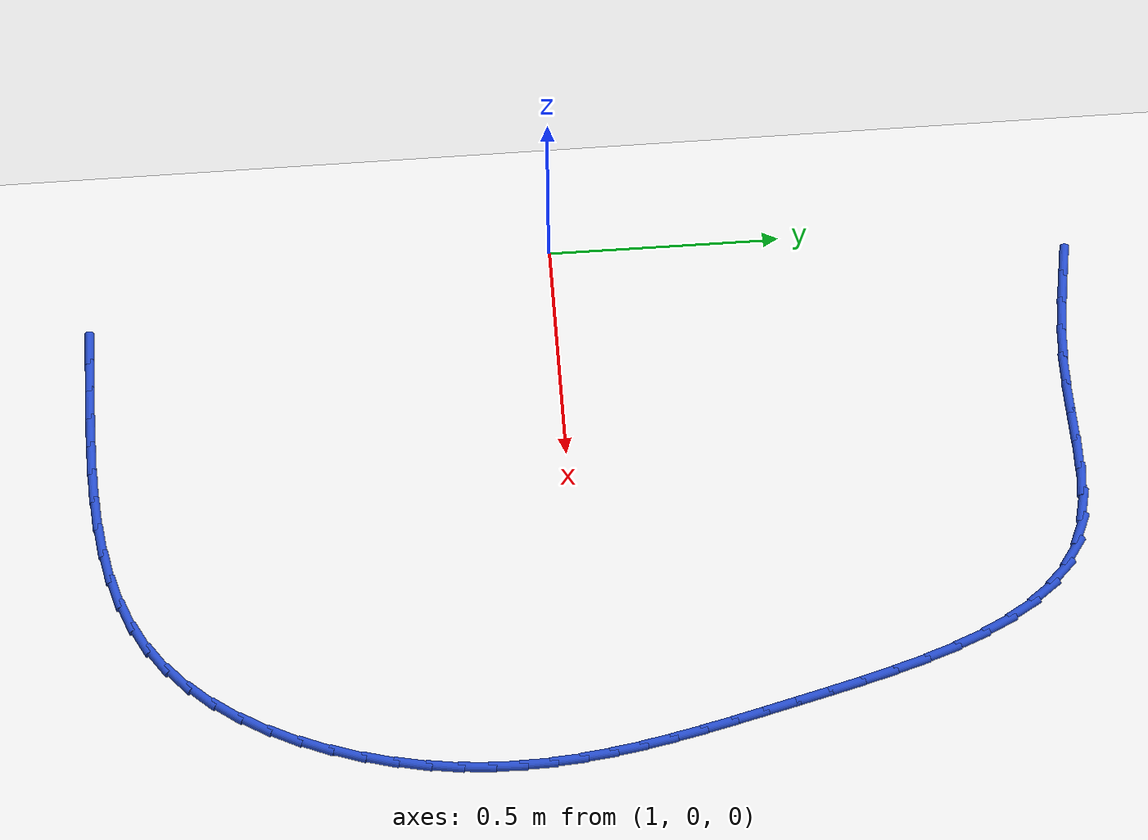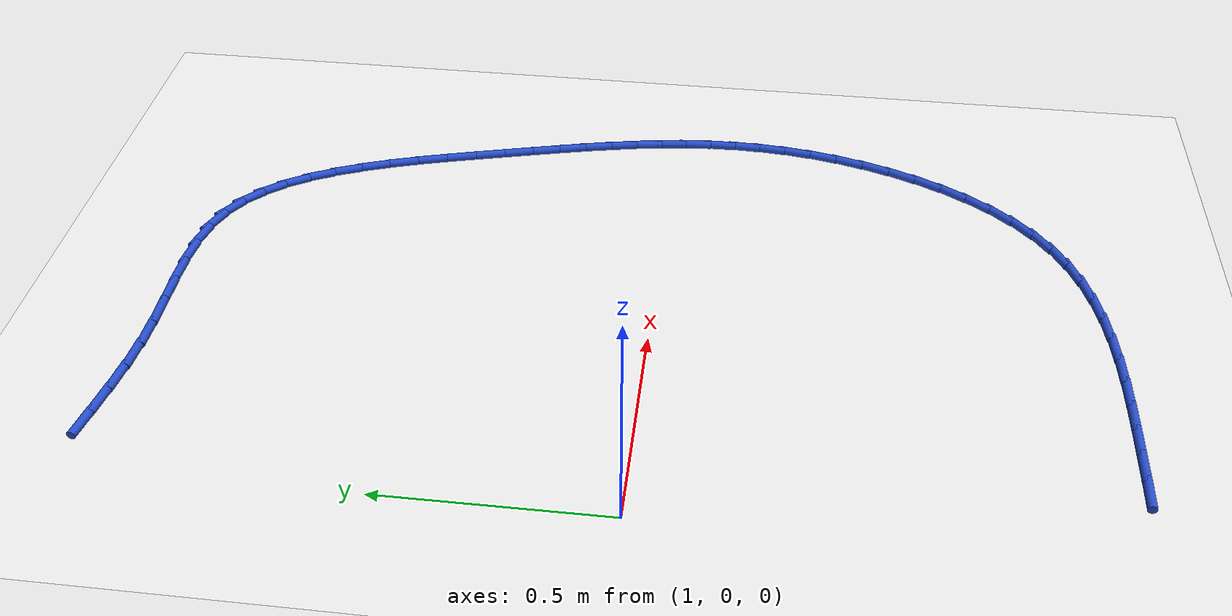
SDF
<sdf version="1.6">
 <world name="default">
  <model name="ground_plane">
   <static>1</static>
   <link name="link">
    <collision name="collision">
     <geometry><plane><normal>0 0 1</normal><size>100 100</size></plane></geometry>
     <surface><friction><ode><mu>100</mu><mu2>50</mu2></ode></friction></surface>
    </collision>
    <visual name="visual">
     <cast_shadows>0</cast_shadows>
     <geometry><plane><normal>0 0 1</normal><size>100 100</size></plane></geometry>
     <material>
      <script><uri>file://media/materials/scripts/gazebo.material</uri><name>Gazebo/WhiteGlow</name></script>
     </material>
    </visual>
   </link>
  </model>
  <model name="line">
   <link name="link_28">
    <pose>1.1109482545762197 1.1129057125135111 0.01 0 1.57 -0.16844177468444788</pose>
    <collision name="collision">
     <geometry><cylinder><radius>0.01</radius><length>0.08</length></cylinder></geometry>
    </collision>
    <visual name="visual">
     <material>
      <script><name>Gazebo/Blue</name><uri>file://media/materials/scripts/gazebo.material</uri></script>
     </material>
     <geometry><cylinder><radius>0.01</radius><length>0.08</length></cylinder></geometry>
    </visual>
   </link>
   <link name="link_29">
    <pose>1.1775346097480919 1.1015824957496283 0.01 0 1.57 -0.1496777221654494</pose>
    <collision name="collision">
     <geometry><cylinder><radius>0.01</radius><length>0.08</length></cylinder></geometry>
    </collision>
    <visual name="visual">
     <material>
      <script><name>Gazebo/Blue</name><uri>file://media/materials/scripts/gazebo.material</uri></script>
     </material>
     <geometry><cylinder><radius>0.01</radius><length>0.08</length></cylinder></geometry>
    </visual>
   </link>
   <link name="link_30">
    <pose>1.2450582289760084 1.0913995561859307 0.01 0 1.57 -0.11454534522985069</pose>
    <collision name="collision">
     <geometry><cylinder><radius>0.01</radius><length>0.08</length></cylinder></geometry>
    </collision>
    <visual name="visual">
     <material>
      <script><name>Gazebo/Blue</name><uri>file://media/materials/scripts/gazebo.material</uri></script>
     </material>
     <geometry><cylinder><radius>0.01</radius><length>0.08</length></cylinder></geometry>
    </visual>
   </link>
   <link name="link_31">
    <pose>1.313380562071217 1.083539142972542 0.01 0 1.57 -0.06310533142458144</pose>
    <collision name="collision">
     <geometry><cylinder><radius>0.01</radius><length>0.08</length></cylinder></geometry>
    </collision>
    <visual name="visual">
     <material>
      <script><name>Gazebo/Blue</name><uri>file://media/materials/scripts/gazebo.material</uri></script>
     </material>
     <geometry><cylinder><radius>0.01</radius><length>0.08</length></cylinder></geometry>
    </visual>
   </link>
   <link name="link_32">
    <pose>1.3823622820872792 1.079180241005119 0.01 0 1.57 -0.00845999741297285</pose>
    <collision name="collision">
     <geometry><cylinder><radius>0.01</radius><length>0.08</length></cylinder></geometry>
    </collision>
    <visual name="visual">
     <material>
      <script><name>Gazebo/Blue</name><uri>file://media/materials/scripts/gazebo.material</uri></script>
     </material>
     <geometry><cylinder><radius>0.01</radius><length>0.08</length></cylinder></geometry>
    </visual>
   </link>
   <link name="link_33">
    <pose>1.4516480513765242 1.0785940695917093 0.01 0 1.57 0.019125668493492363</pose>
    <collision name="collision">
     <geometry><cylinder><radius>0.01</radius><length>0.08</length></cylinder></geometry>
    </collision>
    <visual name="visual">
     <material>
      <script><name>Gazebo/Blue</name><uri>file://media/materials/scripts/gazebo.material</uri></script>
     </material>
     <geometry><cylinder><radius>0.01</radius><length>0.08</length></cylinder></geometry>
    </visual>
   </link>
   <link name="link_34">
    <pose>1.5203725353303787 1.0799086315781727 0.01 0 1.57 0.015381811961041046</pose>
    <collision name="collision">
     <geometry><cylinder><radius>0.01</radius><length>0.08</length></cylinder></geometry>
    </collision>
    <visual name="visual">
     <material>
      <script><name>Gazebo/Blue</name><uri>file://media/materials/scripts/gazebo.material</uri></script>
     </material>
     <geometry><cylinder><radius>0.01</radius><length>0.08</length></cylinder></geometry>
    </visual>
   </link>
   <link name="link_35">
    <pose>1.5875968260202156 1.0809427445351545 0.01 0 1.57 -0.022031077596748792</pose>
    <collision name="collision">
     <geometry><cylinder><radius>0.01</radius><length>0.08</length></cylinder></geometry>
    </collision>
    <visual name="visual">
     <material>
      <script><name>Gazebo/Blue</name><uri>file://media/materials/scripts/gazebo.material</uri></script>
     </material>
     <geometry><cylinder><radius>0.01</radius><length>0.08</length></cylinder></geometry>
    </visual>
   </link>
   <link name="link_36">
    <pose>1.6523820155174085 1.0795152260333005 0.01 0 1.57 -0.0985336607977842</pose>
    <collision name="collision">
     <geometry><cylinder><radius>0.01</radius><length>0.08</length></cylinder></geometry>
    </collision>
    <visual name="visual">
     <material>
      <script><name>Gazebo/Blue</name><uri>file://media/materials/scripts/gazebo.material</uri></script>
     </material>
     <geometry><cylinder><radius>0.01</radius><length>0.08</length></cylinder></geometry>
    </visual>
   </link>
   <link name="link_37">
    <pose>1.7137891958933307 1.0734448936432563 0.01 0 1.57 -0.22213154908312743</pose>
    <collision name="collision">
     <geometry><cylinder><radius>0.01</radius><length>0.08</length></cylinder></geometry>
    </collision>
    <visual name="visual">
     <material>
      <script><name>Gazebo/Blue</name><uri>file://media/materials/scripts/gazebo.material</uri></script>
     </material>
     <geometry><cylinder><radius>0.01</radius><length>0.08</length></cylinder></geometry>
    </visual>
   </link>
   <link name="link_38">
    <pose>1.7708794592193564 1.0605505649356675 0.01 0 1.57 -0.3991574244228391</pose>
    <collision name="collision">
     <geometry><cylinder><radius>0.01</radius><length>0.08</length></cylinder></geometry>
    </collision>
    <visual name="visual">
     <material>
      <script><name>Gazebo/Blue</name><uri>file://media/materials/scripts/gazebo.material</uri></script>
     </material>
     <geometry><cylinder><radius>0.01</radius><length>0.08</length></cylinder></geometry>
    </visual>
   </link>
   <link name="link_39">
    <pose>1.8227270098125856 1.038681248249998 0.01 0 1.57 -0.6002442120162378</pose>
    <collision name="collision">
     <geometry><cylinder><radius>0.01</radius><length>0.08</length></cylinder></geometry>
    </collision>
    <visual name="visual">
     <material>
      <script><name>Gazebo/Blue</name><uri>file://media/materials/scripts/gazebo.material</uri></script>
     </material>
     <geometry><cylinder><radius>0.01</radius><length>0.08</length></cylinder></geometry>
    </visual>
   </link>
   <link name="link_40">
    <pose>1.8689846302888695 1.0070181206498041 0.01 0 1.57 -0.7772204346976729</pose>
    <collision name="collision">
     <geometry><cylinder><radius>0.01</radius><length>0.08</length></cylinder></geometry>
    </collision>
    <visual name="visual">
     <material>
      <script><name>Gazebo/Blue</name><uri>file://media/materials/scripts/gazebo.material</uri></script>
     </material>
     <geometry><cylinder><radius>0.01</radius><length>0.08</length></cylinder></geometry>
    </visual>
   </link>
   <link name="link_41">
    <pose>1.9100991399244833 0.9665706178925629 0.01 0 1.57 -0.9218828363050832</pose>
    <collision name="collision">
     <geometry><cylinder><radius>0.01</radius><length>0.08</length></cylinder></geometry>
    </collision>
    <visual name="visual">
     <material>
      <script><name>Gazebo/Blue</name><uri>file://media/materials/scripts/gazebo.material</uri></script>
     </material>
     <geometry><cylinder><radius>0.01</radius><length>0.08</length></cylinder></geometry>
    </visual>
   </link>
   <link name="link_42">
    <pose>1.946574920105515 0.9184807117167018 0.01 0 1.57 -1.035955111814462</pose>
    <collision name="collision">
     <geometry><cylinder><radius>0.01</radius><length>0.08</length></cylinder></geometry>
    </collision>
    <visual name="visual">
     <material>
      <script><name>Gazebo/Blue</name><uri>file://media/materials/scripts/gazebo.material</uri></script>
     </material>
     <geometry><cylinder><radius>0.01</radius><length>0.08</length></cylinder></geometry>
    </visual>
   </link>
   <link name="link_43">
    <pose>1.9789163522180504 0.8638903738606493 0.01 0 1.57 -1.1241438036315432</pose>
    <collision name="collision">
     <geometry><cylinder><radius>0.01</radius><length>0.08</length></cylinder></geometry>
    </collision>
    <visual name="visual">
     <material>
      <script><name>Gazebo/Blue</name><uri>file://media/materials/scripts/gazebo.material</uri></script>
     </material>
     <geometry><cylinder><radius>0.01</radius><length>0.08</length></cylinder></geometry>
    </visual>
   </link>
   <link name="link_44">
    <pose>2.0076278176481757 0.8039415760628332 0.01 0 1.57 -1.191368372073447</pose>
    <collision name="collision">
     <geometry><cylinder><radius>0.01</radius><length>0.08</length></cylinder></geometry>
    </collision>
    <visual name="visual">
     <material>
      <script><name>Gazebo/Blue</name><uri>file://media/materials/scripts/gazebo.material</uri></script>
     </material>
     <geometry><cylinder><radius>0.01</radius><length>0.08</length></cylinder></geometry>
    </visual>
   </link>
   <link name="link_45">
    <pose>2.033213697781978 0.7397762900616822 0.01 0 1.57 -1.2416834515367436</pose>
    <collision name="collision">
     <geometry><cylinder><radius>0.01</radius><length>0.08</length></cylinder></geometry>
    </collision>
    <visual name="visual">
     <material>
      <script><name>Gazebo/Blue</name><uri>file://media/materials/scripts/gazebo.material</uri></script>
     </material>
     <geometry><cylinder><radius>0.01</radius><length>0.08</length></cylinder></geometry>
    </visual>
   </link>
   <link name="link_46">
    <pose>2.056178374005543 0.672536487595624 0.01 0 1.57 -1.278064791603683</pose>
    <collision name="collision">
     <geometry><cylinder><radius>0.01</radius><length>0.08</length></cylinder></geometry>
    </collision>
    <visual name="visual">
     <material>
      <script><name>Gazebo/Blue</name><uri>file://media/materials/scripts/gazebo.material</uri></script>
     </material>
     <geometry><cylinder><radius>0.01</radius><length>0.08</length></cylinder></geometry>
    </visual>
   </link>
   <link name="link_47">
    <pose>2.077026227704957 0.6033641404030866 0.01 0 1.57 -1.3024884591872197</pose>
    <collision name="collision">
     <geometry><cylinder><radius>0.01</radius><length>0.08</length></cylinder></geometry>
    </collision>
    <visual name="visual">
     <material>
      <script><name>Gazebo/Blue</name><uri>file://media/materials/scripts/gazebo.material</uri></script>
     </material>
     <geometry><cylinder><radius>0.01</radius><length>0.08</length></cylinder></geometry>
    </visual>
   </link>
   <link name="link_48">
    <pose>2.0962616402663086 0.5334012202224985 0.01 0 1.57 -1.3160467361043522</pose>
    <collision name="collision">
     <geometry><cylinder><radius>0.01</radius><length>0.08</length></cylinder></geometry>
    </collision>
    <visual name="visual">
     <material>
      <script><name>Gazebo/Blue</name><uri>file://media/materials/scripts/gazebo.material</uri></script>
     </material>
     <geometry><cylinder><radius>0.01</radius><length>0.08</length></cylinder></geometry>
    </visual>
   </link>
   <link name="link_49">
    <pose>2.1143889930756816 0.46378969879228743 0.01 0 1.57 -1.3195869533842701</pose>
    <collision name="collision">
     <geometry><cylinder><radius>0.01</radius><length>0.08</length></cylinder></geometry>
    </collision>
    <visual name="visual">
     <material>
      <script><name>Gazebo/Blue</name><uri>file://media/materials/scripts/gazebo.material</uri></script>
     </material>
     <geometry><cylinder><radius>0.01</radius><length>0.08</length></cylinder></geometry>
    </visual>
   </link>
   <link name="link_50">
    <pose>2.1318832835404065 0.39562053151189697 0.01 0 1.57 -1.321664898488997</pose>
    <collision name="collision">
     <geometry><cylinder><radius>0.01</radius><length>0.08</length></cylinder></geometry>
    </collision>
    <visual name="visual">
     <material>
      <script><name>Gazebo/Blue</name><uri>file://media/materials/scripts/gazebo.material</uri></script>
     </material>
     <geometry><cylinder><radius>0.01</radius><length>0.08</length></cylinder></geometry>
    </visual>
   </link>
   <link name="link_51">
    <pose>2.1487774304616623 0.32921713878439507 0.01 0 1.57 -1.3293214512692484</pose>
    <collision name="collision">
     <geometry><cylinder><radius>0.01</radius><length>0.08</length></cylinder></geometry>
    </collision>
    <visual name="visual">
     <material>
      <script><name>Gazebo/Blue</name><uri>file://media/materials/scripts/gazebo.material</uri></script>
     </material>
     <geometry><cylinder><radius>0.01</radius><length>0.08</length></cylinder></geometry>
    </visual>
   </link>
   <link name="link_52">
    <pose>2.1647628042689644 0.26430994618215514 0.01 0 1.57 -1.3431025805285977</pose>
    <collision name="collision">
     <geometry><cylinder><radius>0.01</radius><length>0.08</length></cylinder></geometry>
    </collision>
    <visual name="visual">
     <material>
      <script><name>Gazebo/Blue</name><uri>file://media/materials/scripts/gazebo.material</uri></script>
     </material>
     <geometry><cylinder><radius>0.01</radius><length>0.08</length></cylinder></geometry>
    </visual>
   </link>
   <link name="link_53">
    <pose>2.1795219179268237 0.2006140009844708 0.01 0 1.57 -1.3632893728662778</pose>
    <collision name="collision">
     <geometry><cylinder><radius>0.01</radius><length>0.08</length></cylinder></geometry>
    </collision>
    <visual name="visual">
     <material>
      <script><name>Gazebo/Blue</name><uri>file://media/materials/scripts/gazebo.material</uri></script>
     </material>
     <geometry><cylinder><radius>0.01</radius><length>0.08</length></cylinder></geometry>
    </visual>
   </link>
   <link name="link_54">
    <pose>2.1927372843997506 0.1378443504706351 0.01 0 1.57 -1.3900381113580724</pose>
    <collision name="collision">
     <geometry><cylinder><radius>0.01</radius><length>0.08</length></cylinder></geometry>
    </collision>
    <visual name="visual">
     <material>
      <script><name>Gazebo/Blue</name><uri>file://media/materials/scripts/gazebo.material</uri></script>
     </material>
     <geometry><cylinder><radius>0.01</radius><length>0.08</length></cylinder></geometry>
    </visual>
   </link>
   <link name="link_55">
    <pose>2.2040914166522567 0.0757160419199414 0.01 0 1.57 -1.4233375647715363</pose>
    <collision name="collision">
     <geometry><cylinder><radius>0.01</radius><length>0.08</length></cylinder></geometry>
    </collision>
    <visual name="visual">
     <material>
      <script><name>Gazebo/Blue</name><uri>file://media/materials/scripts/gazebo.material</uri></script>
     </material>
     <geometry><cylinder><radius>0.01</radius><length>0.08</length></cylinder></geometry>
    </visual>
   </link>
   <link name="link_56">
    <pose>2.2132668276488525 0.013944122611683485 0.01 0 1.57 -1.4629641958255697</pose>
    <collision name="collision">
     <geometry><cylinder><radius>0.01</radius><length>0.08</length></cylinder></geometry>
    </collision>
    <visual name="visual">
     <material>
      <script><name>Gazebo/Blue</name><uri>file://media/materials/scripts/gazebo.material</uri></script>
     </material>
     <geometry><cylinder><radius>0.01</radius><length>0.08</length></cylinder></geometry>
    </visual>
   </link>
   <link name="link_57">
    <pose>2.2199460303540506 -0.047756360174846454 0.01 0 1.57 -1.508443762780482</pose>
    <collision name="collision">
     <geometry><cylinder><radius>0.01</radius><length>0.08</length></cylinder></geometry>
    </collision>
    <visual name="visual">
     <material>
      <script><name>Gazebo/Blue</name><uri>file://media/materials/scripts/gazebo.material</uri></script>
     </material>
     <geometry><cylinder><radius>0.01</radius><length>0.08</length></cylinder></geometry>
    </visual>
   </link>
   <link name="link_58">
    <pose>2.223811537732359 -0.10967035916035367 0.01 0 1.57 -1.5590311914157142</pose>
    <collision name="collision">
     <geometry><cylinder><radius>0.01</radius><length>0.08</length></cylinder></geometry>
    </collision>
    <visual name="visual">
     <material>
      <script><name>Gazebo/Blue</name><uri>file://media/materials/scripts/gazebo.material</uri></script>
     </material>
     <geometry><cylinder><radius>0.01</radius><length>0.08</length></cylinder></geometry>
    </visual>
   </link>
   <link name="link_59">
    <pose>2.2245458627482924 -0.17208282706554623 0.01 0 1.57 1.527871429393778</pose>
    <collision name="collision">
     <geometry><cylinder><radius>0.01</radius><length>0.08</length></cylinder></geometry>
    </collision>
    <visual name="visual">
     <material>
      <script><name>Gazebo/Blue</name><uri>file://media/materials/scripts/gazebo.material</uri></script>
     </material>
     <geometry><cylinder><radius>0.01</radius><length>0.08</length></cylinder></geometry>
    </visual>
   </link>
   <link name="link_60">
    <pose>2.2218315183663586 -0.2352787166111293 0.01 0 1.57 1.4702971243385903</pose>
    <collision name="collision">
     <geometry><cylinder><radius>0.01</radius><length>0.08</length></cylinder></geometry>
    </collision>
    <visual name="visual">
     <material>
      <script><name>Gazebo/Blue</name><uri>file://media/materials/scripts/gazebo.material</uri></script>
     </material>
     <geometry><cylinder><radius>0.01</radius><length>0.08</length></cylinder></geometry>
    </visual>
   </link>
   <link name="link_61">
    <pose>2.2153512608465986 -0.2995421694221848 0.01 0 1.57 1.4117527715050628</pose>
    <collision name="collision">
     <geometry><cylinder><radius>0.01</radius><length>0.08</length></cylinder></geometry>
    </collision>
    <visual name="visual">
     <material>
      <script><name>Gazebo/Blue</name><uri>file://media/materials/scripts/gazebo.material</uri></script>
     </material>
     <geometry><cylinder><radius>0.01</radius><length>0.08</length></cylinder></geometry>
    </visual>
   </link>
   <link name="link_62">
    <pose>2.204871362911243 -0.36487890097375125 0.01 0 1.57 1.353562532615279</pose>
    <collision name="collision">
     <geometry><cylinder><radius>0.01</radius><length>0.08</length></cylinder></geometry>
    </collision>
    <visual name="visual">
     <material>
      <script><name>Gazebo/Blue</name><uri>file://media/materials/scripts/gazebo.material</uri></script>
     </material>
     <geometry><cylinder><radius>0.01</radius><length>0.08</length></cylinder></geometry>
    </visual>
   </link>
   <link name="link_63">
    <pose>2.1903632899289756 -0.4306105580307011 0.01 0 1.57 1.2944244686210054</pose>
    <collision name="collision">
     <geometry><cylinder><radius>0.01</radius><length>0.08</length></cylinder></geometry>
    </collision>
    <visual name="visual">
     <material>
      <script><name>Gazebo/Blue</name><uri>file://media/materials/scripts/gazebo.material</uri></script>
     </material>
     <geometry><cylinder><radius>0.01</radius><length>0.08</length></cylinder></geometry>
    </visual>
   </link>
   <link name="link_64">
    <pose>2.171829450329577 -0.49595562976304347 0.01 0 1.57 1.2327998251190309</pose>
    <collision name="collision">
     <geometry><cylinder><radius>0.01</radius><length>0.08</length></cylinder></geometry>
    </collision>
    <visual name="visual">
     <material>
      <script><name>Gazebo/Blue</name><uri>file://media/materials/scripts/gazebo.material</uri></script>
     </material>
     <geometry><cylinder><radius>0.01</radius><length>0.08</length></cylinder></geometry>
    </visual>
   </link>
   <link name="link_65">
    <pose>2.1492722525428256 -0.5601326053407898 0.01 0 1.57 1.1671369111249796</pose>
    <collision name="collision">
     <geometry><cylinder><radius>0.01</radius><length>0.08</length></cylinder></geometry>
    </collision>
    <visual name="visual">
     <material>
      <script><name>Gazebo/Blue</name><uri>file://media/materials/scripts/gazebo.material</uri></script>
     </material>
     <geometry><cylinder><radius>0.01</radius><length>0.08</length></cylinder></geometry>
    </visual>
   </link>
   <link name="link_66">
    <pose>2.122694104998501 -0.6223599739339517 0.01 0 1.57 1.0958039531669022</pose>
    <collision name="collision">
     <geometry><cylinder><radius>0.01</radius><length>0.08</length></cylinder></geometry>
    </collision>
    <visual name="visual">
     <material>
      <script><name>Gazebo/Blue</name><uri>file://media/materials/scripts/gazebo.material</uri></script>
     </material>
     <geometry><cylinder><radius>0.01</radius><length>0.08</length></cylinder></geometry>
    </visual>
   </link>
   <link name="link_67">
    <pose>2.092097416126384 -0.6818562247125383 0.01 0 1.57 1.0170534329730991</pose>
    <collision name="collision">
     <geometry><cylinder><radius>0.01</radius><length>0.08</length></cylinder></geometry>
    </collision>
    <visual name="visual">
     <material>
      <script><name>Gazebo/Blue</name><uri>file://media/materials/scripts/gazebo.material</uri></script>
     </material>
     <geometry><cylinder><radius>0.01</radius><length>0.08</length></cylinder></geometry>
    </visual>
   </link>
   <link name="link_68">
    <pose>2.057484594356252 -0.7378398468465617 0.01 0 1.57 0.929037924087789</pose>
    <collision name="collision">
     <geometry><cylinder><radius>0.01</radius><length>0.08</length></cylinder></geometry>
    </collision>
    <visual name="visual">
     <material>
      <script><name>Gazebo/Blue</name><uri>file://media/materials/scripts/gazebo.material</uri></script>
     </material>
     <geometry><cylinder><radius>0.01</radius><length>0.08</length></cylinder></geometry>
    </visual>
   </link>
   <link name="link_69">
    <pose>2.0188580481178855 -0.7895293295060312 0.01 0 1.57 0.8299165683915024</pose>
    <collision name="collision">
     <geometry><cylinder><radius>0.01</radius><length>0.08</length></cylinder></geometry>
    </collision>
    <visual name="visual">
     <material>
      <script><name>Gazebo/Blue</name><uri>file://media/materials/scripts/gazebo.material</uri></script>
     </material>
     <geometry><cylinder><radius>0.01</radius><length>0.08</length></cylinder></geometry>
    </visual>
   </link>
   <link name="link_70">
    <pose>1.9762201858410628 -0.8361431618609587 0.01 0 1.57 0.7181101206050284</pose>
    <collision name="collision">
     <geometry><cylinder><radius>0.01</radius><length>0.08</length></cylinder></geometry>
    </collision>
    <visual name="visual">
     <material>
      <script><name>Gazebo/Blue</name><uri>file://media/materials/scripts/gazebo.material</uri></script>
     </material>
     <geometry><cylinder><radius>0.01</radius><length>0.08</length></cylinder></geometry>
    </visual>
   </link>
   <link name="link_71">
    <pose>1.9295734159555644 -0.8768998330813538 0.01 0 1.57 0.5934458234886543</pose>
    <collision name="collision">
     <geometry><cylinder><radius>0.01</radius><length>0.08</length></cylinder></geometry>
    </collision>
    <visual name="visual">
     <material>
      <script><name>Gazebo/Blue</name><uri>file://media/materials/scripts/gazebo.material</uri></script>
     </material>
     <geometry><cylinder><radius>0.01</radius><length>0.08</length></cylinder></geometry>
    </visual>
   </link>
   <link name="link_72">
    <pose>1.8789329311202208 -0.9110597675728596 0.01 0 1.57 0.469284042095915</pose>
    <collision name="collision">
     <geometry><cylinder><radius>0.01</radius><length>0.08</length></cylinder></geometry>
    </collision>
    <visual name="visual">
     <material>
      <script><name>Gazebo/Blue</name><uri>file://media/materials/scripts/gazebo.material</uri></script>
     </material>
     <geometry><cylinder><radius>0.01</radius><length>0.08</length></cylinder></geometry>
    </visual>
   </link>
   <link name="link_73">
    <pose>1.8245441128190423 -0.938638462462739 0.01 0 1.57 0.35926690574931397</pose>
    <collision name="collision">
     <geometry><cylinder><radius>0.01</radius><length>0.08</length></cylinder></geometry>
    </collision>
    <visual name="visual">
     <material>
      <script><name>Gazebo/Blue</name><uri>file://media/materials/scripts/gazebo.material</uri></script>
     </material>
     <geometry><cylinder><radius>0.01</radius><length>0.08</length></cylinder></geometry>
    </visual>
   </link>
   <link name="link_74">
    <pose>1.7668518161832967 -0.9603057346942185 0.01 0 1.57 0.2652561198212143</pose>
    <collision name="collision">
     <geometry><cylinder><radius>0.01</radius><length>0.08</length></cylinder></geometry>
    </collision>
    <visual name="visual">
     <material>
      <script><name>Gazebo/Blue</name><uri>file://media/materials/scripts/gazebo.material</uri></script>
     </material>
     <geometry><cylinder><radius>0.01</radius><length>0.08</length></cylinder></geometry>
    </visual>
   </link>
   <link name="link_75">
    <pose>1.7063074980118562 -0.976753056211013 0.01 0 1.57 0.18713803397728473</pose>
    <collision name="collision">
     <geometry><cylinder><radius>0.01</radius><length>0.08</length></cylinder></geometry>
    </collision>
    <visual name="visual">
     <material>
      <script><name>Gazebo/Blue</name><uri>file://media/materials/scripts/gazebo.material</uri></script>
     </material>
     <geometry><cylinder><radius>0.01</radius><length>0.08</length></cylinder></geometry>
    </visual>
   </link>
   <link name="link_76">
    <pose>1.6433626151035865 -0.9886718989568348 0.01 0 1.57 0.12390110957538561</pose>
    <collision name="collision">
     <geometry><cylinder><radius>0.01</radius><length>0.08</length></cylinder></geometry>
    </collision>
    <visual name="visual">
     <material>
      <script><name>Gazebo/Blue</name><uri>file://media/materials/scripts/gazebo.material</uri></script>
     </material>
     <geometry><cylinder><radius>0.01</radius><length>0.08</length></cylinder></geometry>
    </visual>
   </link>
   <link name="link_77">
    <pose>1.5784686242573593 -0.9967537348753983 0.01 0 1.57 0.07421468736081956</pose>
    <collision name="collision">
     <geometry><cylinder><radius>0.01</radius><length>0.08</length></cylinder></geometry>
    </collision>
    <visual name="visual">
     <material>
      <script><name>Gazebo/Blue</name><uri>file://media/materials/scripts/gazebo.material</uri></script>
     </material>
     <geometry><cylinder><radius>0.01</radius><length>0.08</length></cylinder></geometry>
    </visual>
   </link>
   <link name="link_78">
    <pose>1.5120769822720412 -1.0016900359104166 0.01 0 1.57 0.03679118652936632</pose>
    <collision name="collision">
     <geometry><cylinder><radius>0.01</radius><length>0.08</length></cylinder></geometry>
    </collision>
    <visual name="visual">
     <material>
      <script><name>Gazebo/Blue</name><uri>file://media/materials/scripts/gazebo.material</uri></script>
     </material>
     <geometry><cylinder><radius>0.01</radius><length>0.08</length></cylinder></geometry>
    </visual>
   </link>
   <link name="link_79">
    <pose>1.4446391459465027 -1.0041722740056036 0.01 0 1.57 0.010577583922824683</pose>
    <collision name="collision">
     <geometry><cylinder><radius>0.01</radius><length>0.08</length></cylinder></geometry>
    </collision>
    <visual name="visual">
     <material>
      <script><name>Gazebo/Blue</name><uri>file://media/materials/scripts/gazebo.material</uri></script>
     </material>
     <geometry><cylinder><radius>0.01</radius><length>0.08</length></cylinder></geometry>
    </visual>
   </link>
   <link name="link_80">
    <pose>1.3766065720796112 -1.0048919211046727 0.01 0 1.57 -0.005155327228479612</pose>
    <collision name="collision">
     <geometry><cylinder><radius>0.01</radius><length>0.08</length></cylinder></geometry>
    </collision>
    <visual name="visual">
     <material>
      <script><name>Gazebo/Blue</name><uri>file://media/materials/scripts/gazebo.material</uri></script>
     </material>
     <geometry><cylinder><radius>0.01</radius><length>0.08</length></cylinder></geometry>
    </visual>
   </link>
   <link name="link_81">
    <pose>1.3084307174702379 -1.0045404491513379 0.01 0 1.57 -0.010929195561735288</pose>
    <collision name="collision">
     <geometry><cylinder><radius>0.01</radius><length>0.08</length></cylinder></geometry>
    </collision>
    <visual name="visual">
     <material>
      <script><name>Gazebo/Blue</name><uri>file://media/materials/scripts/gazebo.material</uri></script>
     </material>
     <geometry><cylinder><radius>0.01</radius><length>0.08</length></cylinder></geometry>
    </visual>
   </link>
   <link name="link_82">
    <pose>1.2405593766644294 -1.0037986404587131 0.01 0 1.57 -0.013446719976415592</pose>
    <collision name="collision">
     <geometry><cylinder><radius>0.01</radius><length>0.08</length></cylinder></geometry>
    </collision>
    <visual name="visual">
     <material>
      <script><name>Gazebo/Blue</name><uri>file://media/materials/scripts/gazebo.material</uri></script>
     </material>
     <geometry><cylinder><radius>0.01</radius><length>0.08</length></cylinder></geometry>
    </visual>
   </link>
   <link name="link_83">
    <pose>1.173285040628387 -1.0028939667738068 0.01 0 1.57 -0.021796492726562897</pose>
    <collision name="collision">
     <geometry><cylinder><radius>0.01</radius><length>0.08</length></cylinder></geometry>
    </collision>
    <visual name="visual">
     <material>
      <script><name>Gazebo/Blue</name><uri>file://media/materials/scripts/gazebo.material</uri></script>
     </material>
     <geometry><cylinder><radius>0.01</radius><length>0.08</length></cylinder></geometry>
    </visual>
   </link>
  </model>
 </world>
</sdf>
